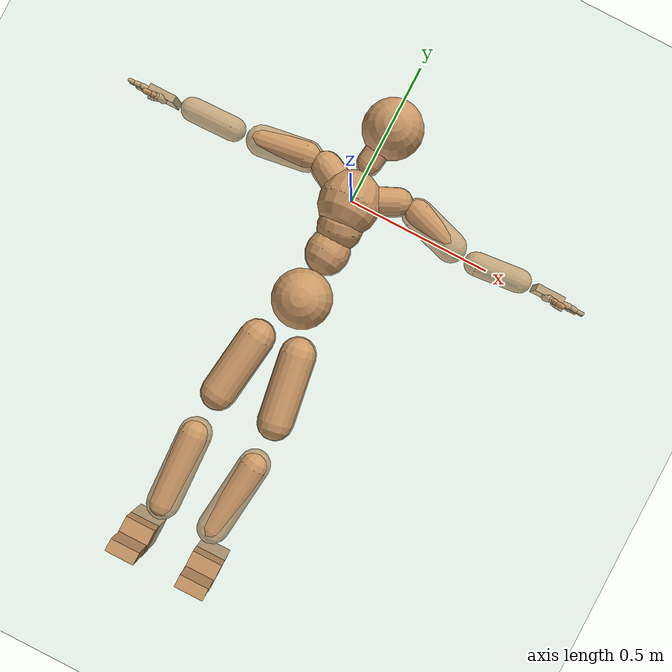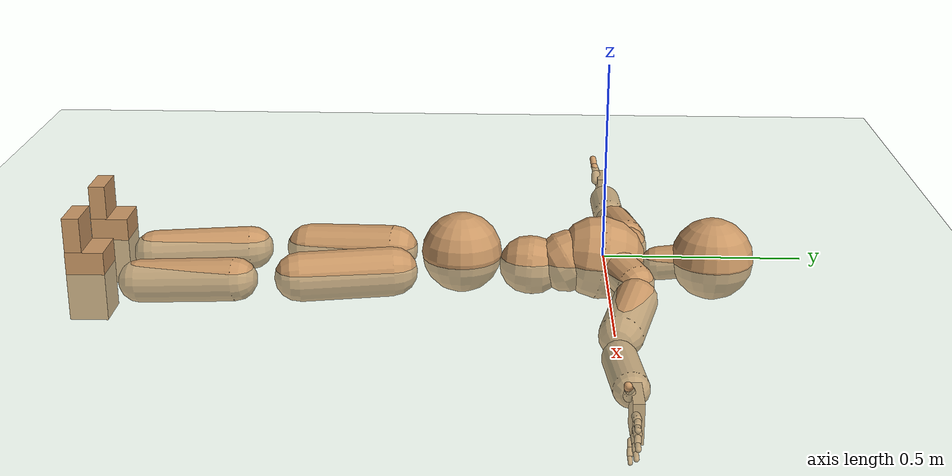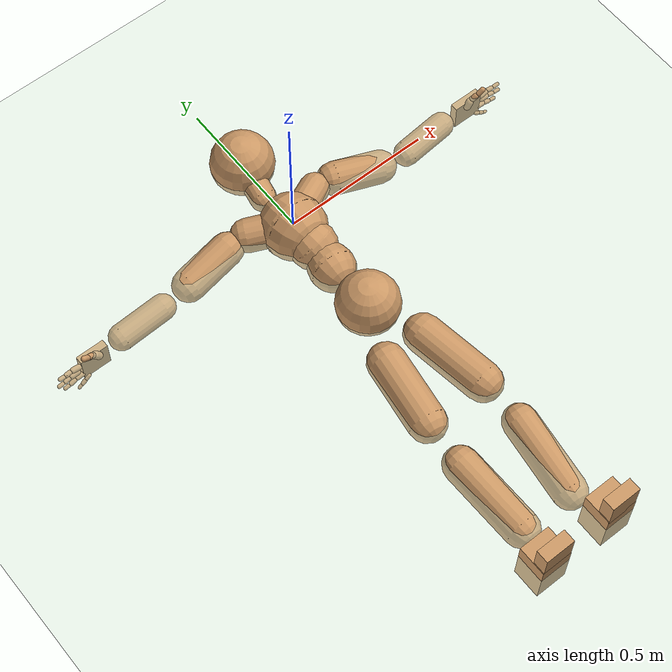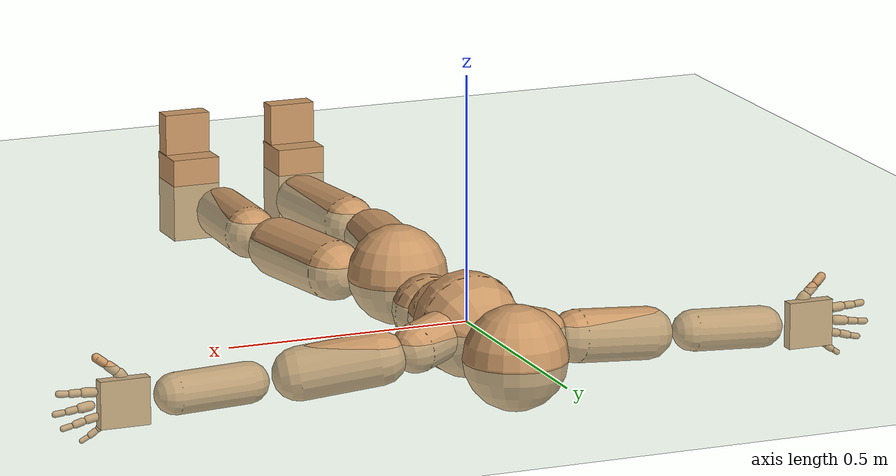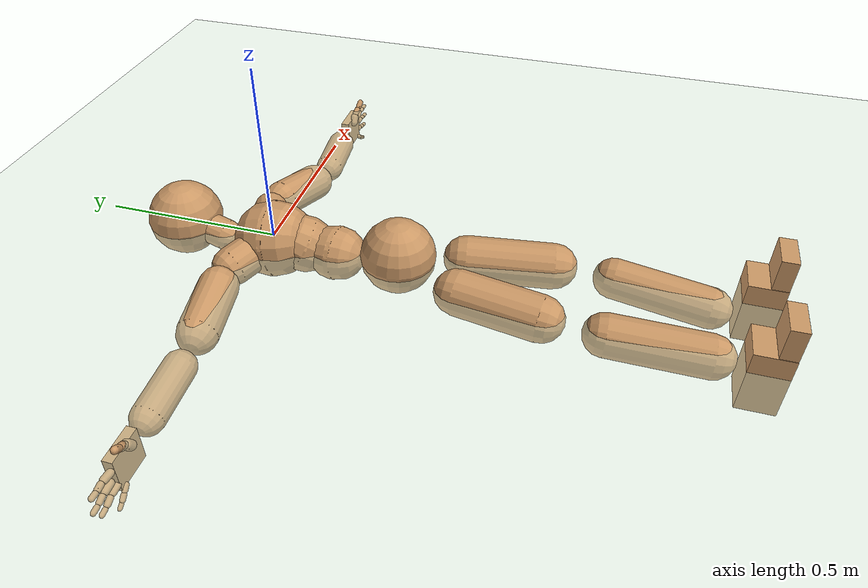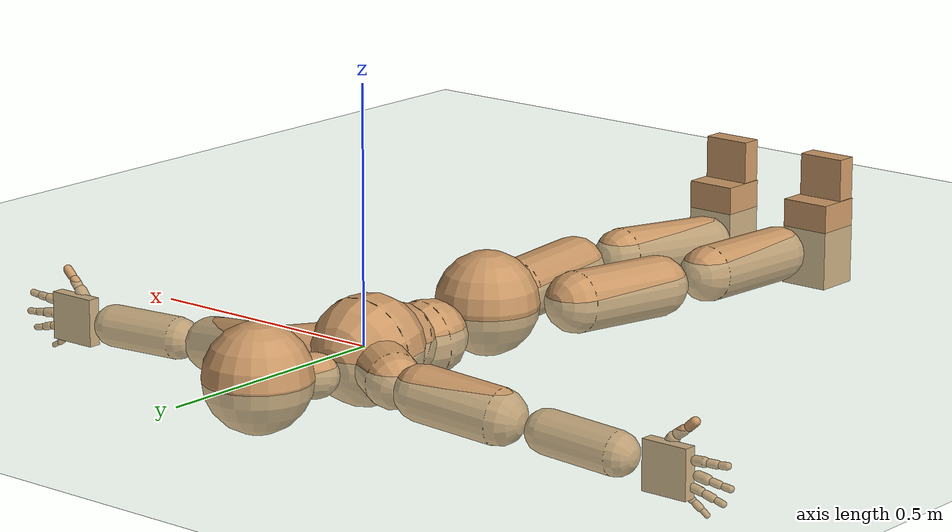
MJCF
<mujoco model="humanoid">
  <compiler coordinate="local"/>
  <default>
    <joint damping="0.0" armature="0.01" stiffness="0.0" limited="true"/>
    <geom conaffinity="1" condim="3" contype="7" margin="0.001" rgba="0.8 0.6 .4 1"/>
  </default>
  <asset>
    <texture type="skybox" builtin="gradient" rgb1=".4 .5 .6" rgb2="0 0 0" width="100" height="100"/>
    <texture builtin="flat" height="1278" mark="cross" markrgb="1 1 1" name="texgeom" random="0.01" rgb1="0.8 0.6 0.4" rgb2="0.8 0.6 0.4" type="cube" width="127"/>
    <texture builtin="checker" height="100" name="texplane" rgb1="0 0 0" rgb2="0.8 0.8 0.8" type="2d" width="100"/>
    <material name="MatPlane" reflectance="0.5" shininess="1" specular="1" texrepeat="60 60" texture="texplane"/>
    <material name="geom" texture="texgeom" texuniform="true"/>
  </asset>
  <worldbody>
    <light cutoff="100" diffuse="1 1 1" dir="-0 0 -1.3" directional="true" exponent="1" pos="0 0 1.3" specular=".1 .1 .1"/>
    <geom conaffinity="1" condim="3" name="floor" pos="0 0 0" rgba="0.8 0.9 0.8 1" size="100 100 .2" type="plane" material="MatPlane"/>
    <body name="Pelvis" pos="0.0031 -0.3613 0.0068">
      <freejoint name="Pelvis"/>
      <geom type="sphere" contype="1" conaffinity="1" density="4629.6296296296305" size="0.1027" pos="0.0000 0.0000 0.0000" name="Pelvis"/>
      <body name="L_Hip" pos="0.0604 -0.0947 -0.0262">
        <joint name="L_Hip_x" type="hinge" pos="0 0 0" axis="1 0 0" user="250 2.5 1 500 10 2" armature="0.01" range="-90.0000 90.0000" damping="0" stiffness="0"/>
        <joint name="L_Hip_y" type="hinge" pos="0 0 0" axis="0 1 0" user="250 2.5 1 500 10 2" armature="0.01" range="-90.0000 90.0000" damping="0" stiffness="0"/>
        <joint name="L_Hip_z" type="hinge" pos="0 0 0" axis="0 0 1" user="250 2.5 1 500 10 2" armature="0.01" range="-90.0000 90.0000" damping="0" stiffness="0"/>
        <geom type="capsule" contype="1" conaffinity="1" density="2040.816327" fromto="0.0121 -0.0777 -0.0014 0.0483 -0.3107 -0.0055" size="0.0629" name="L_Hip"/>
        <body name="L_Knee" pos="0.0603 -0.3884 -0.0069">
          <joint name="L_Knee_x" type="hinge" pos="0 0 0" axis="1 0 0" user="250 2.5 1 500 10 2" armature="0.01" range="-180.0000 180.0000" damping="0" stiffness="0"/>
          <joint name="L_Knee_y" type="hinge" pos="0 0 0" axis="0 1 0" user="250 2.5 1 500 10 2" armature="0.01" range="-5.6250 5.6250" damping="0" stiffness="0"/>
          <joint name="L_Knee_z" type="hinge" pos="0 0 0" axis="0 0 1" user="250 2.5 1 500 10 2" armature="0.01" range="-5.6250 5.6250" damping="0" stiffness="0"/>
          <geom type="capsule" contype="1" conaffinity="1" density="1234.567901" fromto="-0.0091 -0.0835 -0.0064 -0.0363 -0.3341 -0.0256" size="0.0553" name="L_Knee"/>
          <body name="L_Ankle" pos="-0.0454 -0.4177 -0.0321">
            <joint name="L_Ankle_x" type="hinge" pos="0 0 0" axis="1 0 0" user="150 2.5 1 500 10 2" armature="0.01" range="-90.0000 90.0000" damping="0" stiffness="0"/>
            <joint name="L_Ankle_y" type="hinge" pos="0 0 0" axis="0 1 0" user="150 2.5 1 500 10 2" armature="0.01" range="-90.0000 90.0000" damping="0" stiffness="0"/>
            <joint name="L_Ankle_z" type="hinge" pos="0 0 0" axis="0 0 1" user="150 2.5 1 500 10 2" armature="0.01" range="-90.0000 90.0000" damping="0" stiffness="0"/>
            <geom type="box" density="450.945141" pos="0.0432 -0.0306 0.0239" size="0.0521 0.0483 0.0897" quat="1.0000 0.0000 0.0000 0.0000" name="L_Ankle"/>
            <body name="L_Toe" pos="0.0501 -0.061 0.1231">
              <joint name="L_Toe_x" type="hinge" pos="0 0 0" axis="1 0 0" user="150 1 1 500 1 1" armature="0.01" range="-90.0000 90.0000" damping="0" stiffness="0"/>
              <joint name="L_Toe_y" type="hinge" pos="0 0 0" axis="0 1 0" user="150 1 1 500 1 1" armature="0.01" range="-45.0000 45.0000" damping="0" stiffness="0"/>
              <joint name="L_Toe_z" type="hinge" pos="0 0 0" axis="0 0 1" user="150 1 1 500 1 1" armature="0.01" range="-45.0000 45.0000" damping="0" stiffness="0"/>
              <geom type="box" density="419.071743" pos="-0.0069 0.0034 0.0268" size="0.05 0.0213 0.0518" quat="1.0000 0.0000 0.0000 0.0000" name="L_Toe"/>
            </body>
          </body>
        </body>
      </body>
      <body name="R_Hip" pos="-0.0654 -0.1063 -0.0208">
        <joint name="R_Hip_x" type="hinge" pos="0 0 0" axis="1 0 0" user="250 2.5 1 500 10 2" armature="0.01" range="-90.0000 90.0000" damping="0" stiffness="0"/>
        <joint name="R_Hip_y" type="hinge" pos="0 0 0" axis="0 1 0" user="250 2.5 1 500 10 2" armature="0.01" range="-90.0000 90.0000" damping="0" stiffness="0"/>
        <joint name="R_Hip_z" type="hinge" pos="0 0 0" axis="0 0 1" user="250 2.5 1 500 10 2" armature="0.01" range="-90.0000 90.0000" damping="0" stiffness="0"/>
        <geom type="capsule" contype="1" conaffinity="1" density="2040.816327" fromto="-0.0099 -0.0743 -0.0030 -0.0395 -0.2972 -0.0121" size="0.0622" name="R_Hip"/>
        <body name="R_Knee" pos="-0.0493 -0.3715 -0.0151">
          <joint name="R_Knee_x" type="hinge" pos="0 0 0" axis="1 0 0" user="250 2.5 1 500 10 2" armature="0.01" range="-180.0000 180.0000" damping="0" stiffness="0"/>
          <joint name="R_Knee_y" type="hinge" pos="0 0 0" axis="0 1 0" user="250 2.5 1 500 10 2" armature="0.01" range="-5.6250 5.6250" damping="0" stiffness="0"/>
          <joint name="R_Knee_z" type="hinge" pos="0 0 0" axis="0 0 1" user="250 2.5 1 500 10 2" armature="0.01" range="-5.6250 5.6250" damping="0" stiffness="0"/>
          <geom type="capsule" contype="1" conaffinity="1" density="1234.567901" fromto="0.0031 -0.0851 -0.0039 0.0125 -0.3406 -0.0157" size="0.057" name="R_Knee"/>
          <body name="R_Ankle" pos="0.0156 -0.4257 -0.0197">
            <joint name="R_Ankle_x" type="hinge" pos="0 0 0" axis="1 0 0" user="150 1 1 500 10 2" armature="0.01" range="-90.0000 90.0000" damping="0" stiffness="0"/>
            <joint name="R_Ankle_y" type="hinge" pos="0 0 0" axis="0 1 0" user="150 1 1 500 10 2" armature="0.01" range="-90.0000 90.0000" damping="0" stiffness="0"/>
            <joint name="R_Ankle_z" type="hinge" pos="0 0 0" axis="0 0 1" user="150 1 1 500 10 2" armature="0.01" range="-90.0000 90.0000" damping="0" stiffness="0"/>
            <geom type="box" density="450.940062" pos="-0.0257 -0.0280 0.0144" size="0.0521 0.0483 0.0897" quat="1.0000 0.0000 0.0000 0.0000" name="R_Ankle"/>
            <body name="R_Toe" pos="-0.0408 -0.0611 0.1239">
              <joint name="R_Toe_x" type="hinge" pos="0 0 0" axis="1 0 0" user="150 1 1 500 1 1" armature="0.01" range="-90.0000 90.0000" damping="0" stiffness="0"/>
              <joint name="R_Toe_y" type="hinge" pos="0 0 0" axis="0 1 0" user="150 1 1 500 1 1" armature="0.01" range="-45.0000 45.0000" damping="0" stiffness="0"/>
              <joint name="R_Toe_z" type="hinge" pos="0 0 0" axis="0 0 1" user="150 1 1 500 1 1" armature="0.01" range="-45.0000 45.0000" damping="0" stiffness="0"/>
              <geom type="box" density="419.069268" pos="0.0151 0.0061 0.0164" size="0.05 0.0213 0.0518" quat="1.0000 0.0000 0.0000 0.0000" name="R_Toe"/>
            </body>
          </body>
        </body>
      </body>
      <body name="Torso" pos="-0.0032 0.1122 -0.0293">
        <joint name="Torso_x" type="hinge" pos="0 0 0" axis="1 0 0" user="500 5 1 500 10 2" armature="0.01" range="-60.0000 60.0000" damping="0" stiffness="0"/>
        <joint name="Torso_y" type="hinge" pos="0 0 0" axis="0 1 0" user="500 5 1 500 10 2" armature="0.01" range="-60.0000 60.0000" damping="0" stiffness="0"/>
        <joint name="Torso_z" type="hinge" pos="0 0 0" axis="0 0 1" user="500 5 1 500 10 2" armature="0.01" range="-60.0000 60.0000" damping="0" stiffness="0"/>
        <geom type="capsule" contype="1" conaffinity="1" density="2040.816327" fromto="0.0048 0.0592 -0.0025 0.0059 0.0723 -0.0031" size="0.075" name="Torso"/>
        <body name="Spine" pos="0.0107 0.1315 -0.0057">
          <joint name="Spine_x" type="hinge" pos="0 0 0" axis="1 0 0" user="500 5 1 500 10 2" armature="0.01" range="-60.0000 60.0000" damping="0" stiffness="0"/>
          <joint name="Spine_y" type="hinge" pos="0 0 0" axis="0 1 0" user="500 5 1 500 10 2" armature="0.01" range="-60.0000 60.0000" damping="0" stiffness="0"/>
          <joint name="Spine_z" type="hinge" pos="0 0 0" axis="0 0 1" user="500 5 1 500 10 2" armature="0.01" range="-60.0000 60.0000" damping="0" stiffness="0"/>
          <geom type="capsule" contype="1" conaffinity="1" density="2040.816327" fromto="-0.0054 0.0246 0.0138 -0.0065 0.0300 0.0168" size="0.0789" name="Spine"/>
          <body name="Chest" pos="-0.0119 0.0546 0.0306">
            <joint name="Chest_x" type="hinge" pos="0 0 0" axis="1 0 0" user="500 5 1 500 10 2" armature="0.01" range="-60.0000 60.0000" damping="0" stiffness="0"/>
            <joint name="Chest_y" type="hinge" pos="0 0 0" axis="0 1 0" user="500 5 1 500 10 2" armature="0.01" range="-60.0000 60.0000" damping="0" stiffness="0"/>
            <joint name="Chest_z" type="hinge" pos="0 0 0" axis="0 0 1" user="500 5 1 500 10 2" armature="0.01" range="-60.0000 60.0000" damping="0" stiffness="0"/>
            <geom type="capsule" contype="1" conaffinity="1" density="2040.816327" fromto="-0.0021 0.0520 -0.0076 -0.0026 0.0636 -0.0093" size="0.106" name="Chest"/>
            <body name="Neck" pos="-0.0124 0.1716 -0.0299">
              <joint name="Neck_x" type="hinge" pos="0 0 0" axis="1 0 0" user="150 1 1 250 50 4" armature="0.01" range="-180.0000 180.0000" damping="0" stiffness="0"/>
              <joint name="Neck_y" type="hinge" pos="0 0 0" axis="0 1 0" user="150 1 1 250 50 4" armature="0.01" range="-180.0000 180.0000" damping="0" stiffness="0"/>
              <joint name="Neck_z" type="hinge" pos="0 0 0" axis="0 0 1" user="150 1 1 250 50 4" armature="0.01" range="-180.0000 180.0000" damping="0" stiffness="0"/>
              <geom type="capsule" contype="1" conaffinity="1" density="1000" fromto="0.0051 0.0335 0.0057 0.0204 0.1341 0.0230" size="0.0435" name="Neck"/>
              <body name="Head" pos="0.0255 0.1676 0.0287">
                <joint name="Head_x" type="hinge" pos="0 0 0" axis="1 0 0" user="150 1 1 250 50 4" armature="0.01" range="-90.0000 90.0000" damping="0" stiffness="0"/>
                <joint name="Head_y" type="hinge" pos="0 0 0" axis="0 1 0" user="150 1 1 250 50 4" armature="0.01" range="-90.0000 90.0000" damping="0" stiffness="0"/>
                <joint name="Head_z" type="hinge" pos="0 0 0" axis="0 0 1" user="150 1 1 250 50 4" armature="0.01" range="-90.0000 90.0000" damping="0" stiffness="0"/>
                <geom type="sphere" contype="1" conaffinity="1" density="1000" size="0.1043" pos="0.0000 0.0000 0.0000" name="Head"/>
              </body>
            </body>
            <body name="L_Thorax" pos="0.0457 0.088 -0.0068">
              <joint name="L_Thorax_x" type="hinge" pos="0 0 0" axis="1 0 0" user="200 2 1 500 50 4" armature="0.01" range="-180.0000 180.0000" damping="0" stiffness="0"/>
              <joint name="L_Thorax_y" type="hinge" pos="0 0 0" axis="0 1 0" user="200 2 1 500 50 4" armature="0.01" range="-180.0000 180.0000" damping="0" stiffness="0"/>
              <joint name="L_Thorax_z" type="hinge" pos="0 0 0" axis="0 0 1" user="200 2 1 500 50 4" armature="0.01" range="-180.0000 180.0000" damping="0" stiffness="0"/>
              <geom type="capsule" contype="1" conaffinity="1" density="1000" fromto="0.0234 0.0118 -0.0039 0.0937 0.0472 -0.0157" size="0.0498" name="L_Thorax"/>
              <body name="L_Shoulder" pos="0.1171 0.059 -0.0196">
                <joint name="L_Shoulder_x" type="hinge" pos="0 0 0" axis="1 0 0" user="200 2 1 500 50 4" armature="0.01" range="-180.0000 180.0000" damping="0" stiffness="0"/>
                <joint name="L_Shoulder_y" type="hinge" pos="0 0 0" axis="0 1 0" user="200 2 1 500 50 4" armature="0.01" range="-180.0000 180.0000" damping="0" stiffness="0"/>
                <joint name="L_Shoulder_z" type="hinge" pos="0 0 0" axis="0 0 1" user="200 2 1 500 50 4" armature="0.01" range="-180.0000 180.0000" damping="0" stiffness="0"/>
                <geom type="capsule" contype="1" conaffinity="1" density="1000" fromto="0.0509 -0.0147 -0.0087 0.2034 -0.0587 -0.0350" size="0.0542" name="L_Shoulder"/>
                <body name="L_Elbow" pos="0.2543 -0.0734 -0.0437">
                  <joint name="L_Elbow_x" type="hinge" pos="0 0 0" axis="1 0 0" user="150 1 1 150 10 2" armature="0.01" range="-720.0000 720.0000" damping="0" stiffness="0"/>
                  <joint name="L_Elbow_y" type="hinge" pos="0 0 0" axis="0 1 0" user="150 1 1 150 10 2" armature="0.01" range="-720.0000 720.0000" damping="0" stiffness="0"/>
                  <joint name="L_Elbow_z" type="hinge" pos="0 0 0" axis="0 0 1" user="150 1 1 150 10 2" armature="0.01" range="-720.0000 720.0000" damping="0" stiffness="0"/>
                  <geom type="capsule" contype="1" conaffinity="1" density="1000" fromto="0.0520 0.0051 -0.0003 0.2079 0.0206 -0.0011" size="0.0421" name="L_Elbow"/>
                  <body name="L_Wrist" pos="0.2599 0.0257 -0.0014">
                    <joint name="L_Wrist_x" type="hinge" pos="0 0 0" axis="1 0 0" user="100 1 1 150 1 1" armature="0.01" range="-180.0000 180.0000" damping="0" stiffness="0"/>
                    <joint name="L_Wrist_y" type="hinge" pos="0 0 0" axis="0 1 0" user="100 1 1 150 1 1" armature="0.01" range="-180.0000 180.0000" damping="0" stiffness="0"/>
                    <joint name="L_Wrist_z" type="hinge" pos="0 0 0" axis="0 0 1" user="100 1 1 150 1 1" armature="0.01" range="-180.0000 180.0000" damping="0" stiffness="0"/>
                    <geom type="box" density="1205.666375" pos="0.0549 -0.0014 -0.0032" size="0.0508 0.0128 0.048" quat="1.0000 0.0000 0.0000 0.0000" name="L_Wrist"/>
                    <body name="L_Index1" pos="0.107 -0.0086 0.0202">
                      <joint name="L_Index1_x" type="hinge" pos="0 0 0" axis="1 0 0" user="100 10 1 150" armature="0.01" range="-180.0000 180.0000" damping="0" stiffness="0"/>
                      <joint name="L_Index1_y" type="hinge" pos="0 0 0" axis="0 1 0" user="100 10 1 150" armature="0.01" range="-180.0000 180.0000" damping="0" stiffness="0"/>
                      <joint name="L_Index1_z" type="hinge" pos="0 0 0" axis="0 0 1" user="100 10 1 150" armature="0.01" range="-180.0000 180.0000" damping="0" stiffness="0"/>
                      <geom type="capsule" contype="1" conaffinity="1" density="1000" fromto="0.0066 0.0005 0.0006 0.0264 0.0019 0.0024" size="0.0095" name="L_Index1"/>
                      <body name="L_Index2" pos="0.033 0.0024 0.0029">
                        <joint name="L_Index2_x" type="hinge" pos="0 0 0" axis="1 0 0" user="100 10 1 150" armature="0.01" range="-180.0000 180.0000" damping="0" stiffness="0"/>
                        <joint name="L_Index2_y" type="hinge" pos="0 0 0" axis="0 1 0" user="100 10 1 150" armature="0.01" range="-180.0000 180.0000" damping="0" stiffness="0"/>
                        <joint name="L_Index2_z" type="hinge" pos="0 0 0" axis="0 0 1" user="100 10 1 150" armature="0.01" range="-180.0000 180.0000" damping="0" stiffness="0"/>
                        <geom type="capsule" contype="1" conaffinity="1" density="1000" fromto="0.0046 -0.0005 -0.0000 0.0186 -0.0020 -0.0001" size="0.0079" name="L_Index2"/>
                        <body name="L_Index3" pos="0.0232 -0.0025 -0.0001">
                          <joint name="L_Index3_x" type="hinge" pos="0 0 0" axis="1 0 0" user="100 10 1 150" armature="0.01" range="-180.0000 180.0000" damping="0" stiffness="0"/>
                          <joint name="L_Index3_y" type="hinge" pos="0 0 0" axis="0 1 0" user="100 10 1 150" armature="0.01" range="-180.0000 180.0000" damping="0" stiffness="0"/>
                          <joint name="L_Index3_z" type="hinge" pos="0 0 0" axis="0 0 1" user="100 10 1 150" armature="0.01" range="-180.0000 180.0000" damping="0" stiffness="0"/>
                          <geom type="capsule" contype="1" conaffinity="1" density="1000" fromto="0.0050 -0.0001 0.0004 0.0202 -0.0004 0.0015" size="0.0067" name="L_Index3"/>
                        </body>
                      </body>
                    </body>
                    <body name="L_Middle1" pos="0.1149 -0.0062 -0.0042">
                      <joint name="L_Middle1_x" type="hinge" pos="0 0 0" axis="1 0 0" user="100 10 1 150" armature="0.01" range="-180.0000 180.0000" damping="0" stiffness="0"/>
                      <joint name="L_Middle1_y" type="hinge" pos="0 0 0" axis="0 1 0" user="100 10 1 150" armature="0.01" range="-180.0000 180.0000" damping="0" stiffness="0"/>
                      <joint name="L_Middle1_z" type="hinge" pos="0 0 0" axis="0 0 1" user="100 10 1 150" armature="0.01" range="-180.0000 180.0000" damping="0" stiffness="0"/>
                      <geom type="capsule" contype="1" conaffinity="1" density="1000" fromto="0.0063 0.0002 -0.0008 0.0253 0.0007 -0.0033" size="0.0098" name="L_Middle1"/>
                      <body name="L_Middle2" pos="0.0316 0.0008 -0.0042">
                        <joint name="L_Middle2_x" type="hinge" pos="0 0 0" axis="1 0 0" user="100 10 1 150" armature="0.01" range="-180.0000 180.0000" damping="0" stiffness="0"/>
                        <joint name="L_Middle2_y" type="hinge" pos="0 0 0" axis="0 1 0" user="100 10 1 150" armature="0.01" range="-180.0000 180.0000" damping="0" stiffness="0"/>
                        <joint name="L_Middle2_z" type="hinge" pos="0 0 0" axis="0 0 1" user="100 10 1 150" armature="0.01" range="-180.0000 180.0000" damping="0" stiffness="0"/>
                        <geom type="capsule" contype="1" conaffinity="1" density="1000" fromto="0.0049 -0.0004 -0.0009 0.0194 -0.0017 -0.0035" size="0.0073" name="L_Middle2"/>
                        <body name="L_Middle3" pos="0.0243 -0.0021 -0.0043">
                          <joint name="L_Middle3_x" type="hinge" pos="0 0 0" axis="1 0 0" user="100 10 1 150" armature="0.01" range="-180.0000 180.0000" damping="0" stiffness="0"/>
                          <joint name="L_Middle3_y" type="hinge" pos="0 0 0" axis="0 1 0" user="100 10 1 150" armature="0.01" range="-180.0000 180.0000" damping="0" stiffness="0"/>
                          <joint name="L_Middle3_z" type="hinge" pos="0 0 0" axis="0 0 1" user="100 10 1 150" armature="0.01" range="-180.0000 180.0000" damping="0" stiffness="0"/>
                          <geom type="capsule" contype="1" conaffinity="1" density="1000" fromto="0.0053 -0.0000 -0.0005 0.0210 -0.0001 -0.0019" size="0.0063" name="L_Middle3"/>
                        </body>
                      </body>
                    </body>
                    <body name="L_Pinky1" pos="0.0887 -0.0147 -0.0457">
                      <joint name="L_Pinky1_x" type="hinge" pos="0 0 0" axis="1 0 0" user="100 10 1 150" armature="0.01" range="-180.0000 180.0000" damping="0" stiffness="0"/>
                      <joint name="L_Pinky1_y" type="hinge" pos="0 0 0" axis="0 1 0" user="100 10 1 150" armature="0.01" range="-180.0000 180.0000" damping="0" stiffness="0"/>
                      <joint name="L_Pinky1_z" type="hinge" pos="0 0 0" axis="0 0 1" user="100 10 1 150" armature="0.01" range="-180.0000 180.0000" damping="0" stiffness="0"/>
                      <geom type="capsule" contype="1" conaffinity="1" density="1000" fromto="0.0033 -0.0002 -0.0025 0.0130 -0.0010 -0.0099" size="0.0069" name="L_Pinky1"/>
                      <body name="L_Pinky2" pos="0.0163 -0.0012 -0.0123">
                        <joint name="L_Pinky2_x" type="hinge" pos="0 0 0" axis="1 0 0" user="100 10 1 150" armature="0.01" range="-180.0000 180.0000" damping="0" stiffness="0"/>
                        <joint name="L_Pinky2_y" type="hinge" pos="0 0 0" axis="0 1 0" user="100 10 1 150" armature="0.01" range="-180.0000 180.0000" damping="0" stiffness="0"/>
                        <joint name="L_Pinky2_z" type="hinge" pos="0 0 0" axis="0 0 1" user="100 10 1 150" armature="0.01" range="-180.0000 180.0000" damping="0" stiffness="0"/>
                        <geom type="capsule" contype="1" conaffinity="1" density="1000" fromto="0.0032 -0.0004 -0.0023 0.0129 -0.0014 -0.0092" size="0.0067" name="L_Pinky2"/>
                        <body name="L_Pinky3" pos="0.0162 -0.0018 -0.0115">
                          <joint name="L_Pinky3_x" type="hinge" pos="0 0 0" axis="1 0 0" user="100 10 1 150" armature="0.01" range="-180.0000 180.0000" damping="0" stiffness="0"/>
                          <joint name="L_Pinky3_y" type="hinge" pos="0 0 0" axis="0 1 0" user="100 10 1 150" armature="0.01" range="-180.0000 180.0000" damping="0" stiffness="0"/>
                          <joint name="L_Pinky3_z" type="hinge" pos="0 0 0" axis="0 0 1" user="100 10 1 150" armature="0.01" range="-180.0000 180.0000" damping="0" stiffness="0"/>
                          <geom type="capsule" contype="1" conaffinity="1" density="1000" fromto="0.0036 0.0000 -0.0019 0.0145 0.0002 -0.0076" size="0.0051" name="L_Pinky3"/>
                        </body>
                      </body>
                    </body>
                    <body name="L_Ring1" pos="0.1026 -0.0093 -0.0286">
                      <joint name="L_Ring1_x" type="hinge" pos="0 0 0" axis="1 0 0" user="100 10 1 150" armature="0.01" range="-180.0000 180.0000" damping="0" stiffness="0"/>
                      <joint name="L_Ring1_y" type="hinge" pos="0 0 0" axis="0 1 0" user="100 10 1 150" armature="0.01" range="-180.0000 180.0000" damping="0" stiffness="0"/>
                      <joint name="L_Ring1_z" type="hinge" pos="0 0 0" axis="0 0 1" user="100 10 1 150" armature="0.01" range="-180.0000 180.0000" damping="0" stiffness="0"/>
                      <geom type="capsule" contype="1" conaffinity="1" density="1000" fromto="0.0058 0.0003 -0.0011 0.0234 0.0012 -0.0043" size="0.0083" name="L_Ring1"/>
                      <body name="L_Ring2" pos="0.0292 0.0016 -0.0054">
                        <joint name="L_Ring2_x" type="hinge" pos="0 0 0" axis="1 0 0" user="100 10 1 150" armature="0.01" range="-180.0000 180.0000" damping="0" stiffness="0"/>
                        <joint name="L_Ring2_y" type="hinge" pos="0 0 0" axis="0 1 0" user="100 10 1 150" armature="0.01" range="-180.0000 180.0000" damping="0" stiffness="0"/>
                        <joint name="L_Ring2_z" type="hinge" pos="0 0 0" axis="0 0 1" user="100 10 1 150" armature="0.01" range="-180.0000 180.0000" damping="0" stiffness="0"/>
                        <geom type="capsule" contype="1" conaffinity="1" density="1000" fromto="0.0047 -0.0003 -0.0015 0.0189 -0.0012 -0.0059" size="0.0077" name="L_Ring2"/>
                        <body name="L_Ring3" pos="0.0236 -0.0015 -0.0074">
                          <joint name="L_Ring3_x" type="hinge" pos="0 0 0" axis="1 0 0" user="100 10 1 150" armature="0.01" range="-180.0000 180.0000" damping="0" stiffness="0"/>
                          <joint name="L_Ring3_y" type="hinge" pos="0 0 0" axis="0 1 0" user="100 10 1 150" armature="0.01" range="-180.0000 180.0000" damping="0" stiffness="0"/>
                          <joint name="L_Ring3_z" type="hinge" pos="0 0 0" axis="0 0 1" user="100 10 1 150" armature="0.01" range="-180.0000 180.0000" damping="0" stiffness="0"/>
                          <geom type="capsule" contype="1" conaffinity="1" density="1000" fromto="0.0051 0.0001 -0.0011 0.0205 0.0004 -0.0043" size="0.006" name="L_Ring3"/>
                        </body>
                      </body>
                    </body>
                    <body name="L_Thumb1" pos="0.0427 -0.0189 0.0272">
                      <joint name="L_Thumb1_x" type="hinge" pos="0 0 0" axis="1 0 0" user="100 10 1 150" armature="0.01" range="-180.0000 180.0000" damping="0" stiffness="0"/>
                      <joint name="L_Thumb1_y" type="hinge" pos="0 0 0" axis="0 1 0" user="100 10 1 150" armature="0.01" range="-180.0000 180.0000" damping="0" stiffness="0"/>
                      <joint name="L_Thumb1_z" type="hinge" pos="0 0 0" axis="0 0 1" user="100 10 1 150" armature="0.01" range="-180.0000 180.0000" damping="0" stiffness="0"/>
                      <geom type="capsule" contype="1" conaffinity="1" density="1000" fromto="0.0035 0.0002 0.0052 0.0141 0.0009 0.0208" size="0.0126" name="L_Thumb1"/>
                      <body name="L_Thumb2" pos="0.0177 0.0011 0.026">
                        <joint name="L_Thumb2_x" type="hinge" pos="0 0 0" axis="1 0 0" user="100 10 1 150" armature="0.01" range="-180.0000 180.0000" damping="0" stiffness="0"/>
                        <joint name="L_Thumb2_y" type="hinge" pos="0 0 0" axis="0 1 0" user="100 10 1 150" armature="0.01" range="-180.0000 180.0000" damping="0" stiffness="0"/>
                        <joint name="L_Thumb2_z" type="hinge" pos="0 0 0" axis="0 0 1" user="100 10 1 150" armature="0.01" range="-180.0000 180.0000" damping="0" stiffness="0"/>
                        <geom type="capsule" contype="1" conaffinity="1" density="1000" fromto="0.0043 -0.0011 0.0032 0.0171 -0.0043 0.0128" size="0.01" name="L_Thumb2"/>
                        <body name="L_Thumb3" pos="0.0214 -0.0054 0.016">
                          <joint name="L_Thumb3_x" type="hinge" pos="0 0 0" axis="1 0 0" user="100 10 1 150" armature="0.01" range="-180.0000 180.0000" damping="0" stiffness="0"/>
                          <joint name="L_Thumb3_y" type="hinge" pos="0 0 0" axis="0 1 0" user="100 10 1 150" armature="0.01" range="-180.0000 180.0000" damping="0" stiffness="0"/>
                          <joint name="L_Thumb3_z" type="hinge" pos="0 0 0" axis="0 0 1" user="100 10 1 150" armature="0.01" range="-180.0000 180.0000" damping="0" stiffness="0"/>
                          <geom type="capsule" contype="1" conaffinity="1" density="1000" fromto="0.0047 -0.0007 0.0036 0.0187 -0.0027 0.0144" size="0.0091" name="L_Thumb3"/>
                        </body>
                      </body>
                    </body>
                  </body>
                </body>
              </body>
            </body>
            <body name="R_Thorax" pos="-0.0474 0.087 -0.0137">
              <joint name="R_Thorax_x" type="hinge" pos="0 0 0" axis="1 0 0" user="200 2 1 150 10 2" armature="0.01" range="-180.0000 180.0000" damping="0" stiffness="0"/>
              <joint name="R_Thorax_y" type="hinge" pos="0 0 0" axis="0 1 0" user="200 2 1 150 10 2" armature="0.01" range="-180.0000 180.0000" damping="0" stiffness="0"/>
              <joint name="R_Thorax_z" type="hinge" pos="0 0 0" axis="0 0 1" user="200 2 1 150 10 2" armature="0.01" range="-180.0000 180.0000" damping="0" stiffness="0"/>
              <geom type="capsule" contype="1" conaffinity="1" density="1000" fromto="-0.0202 0.0109 -0.0032 -0.0809 0.0437 -0.0127" size="0.0547" name="R_Thorax"/>
              <body name="R_Shoulder" pos="-0.1012 0.0546 -0.0158">
                <joint name="R_Shoulder_x" type="hinge" pos="0 0 0" axis="1 0 0" user="200 2 1 250 10 2" armature="0.01" range="-180.0000 180.0000" damping="0" stiffness="0"/>
                <joint name="R_Shoulder_y" type="hinge" pos="0 0 0" axis="0 1 0" user="200 2 1 250 10 2" armature="0.01" range="-180.0000 180.0000" damping="0" stiffness="0"/>
                <joint name="R_Shoulder_z" type="hinge" pos="0 0 0" axis="0 0 1" user="200 2 1 250 10 2" armature="0.01" range="-180.0000 180.0000" damping="0" stiffness="0"/>
                <geom type="capsule" contype="1" conaffinity="1" density="1000" fromto="-0.0542 -0.0071 -0.0055 -0.2166 -0.0283 -0.0222" size="0.0542" name="R_Shoulder"/>
                <body name="R_Elbow" pos="-0.2708 -0.0354 -0.0277">
                  <joint name="R_Elbow_x" type="hinge" pos="0 0 0" axis="1 0 0" user="150 1 1 150 10 2" armature="0.01" range="-720.0000 720.0000" damping="0" stiffness="0"/>
                  <joint name="R_Elbow_y" type="hinge" pos="0 0 0" axis="0 1 0" user="150 1 1 150 10 2" armature="0.01" range="-720.0000 720.0000" damping="0" stiffness="0"/>
                  <joint name="R_Elbow_z" type="hinge" pos="0 0 0" axis="0 0 1" user="150 1 1 150 10 2" armature="0.01" range="-720.0000 720.0000" damping="0" stiffness="0"/>
                  <geom type="capsule" contype="1" conaffinity="1" density="1000" fromto="-0.0514 -0.0007 -0.0029 -0.2057 -0.0030 -0.0116" size="0.0424" name="R_Elbow"/>
                  <body name="R_Wrist" pos="-0.2571 -0.0037 -0.0145">
                    <joint name="R_Wrist_x" type="hinge" pos="0 0 0" axis="1 0 0" user="100 1 1 150 1 1" armature="0.01" range="-180.0000 180.0000" damping="0" stiffness="0"/>
                    <joint name="R_Wrist_y" type="hinge" pos="0 0 0" axis="0 1 0" user="100 1 1 150 1 1" armature="0.01" range="-180.0000 180.0000" damping="0" stiffness="0"/>
                    <joint name="R_Wrist_z" type="hinge" pos="0 0 0" axis="0 0 1" user="100 1 1 150 1 1" armature="0.01" range="-180.0000 180.0000" damping="0" stiffness="0"/>
                    <geom type="box" density="1235.542952" pos="-0.0564 -0.0046 -0.0030" size="0.0478 0.0128 0.048" quat="1.0000 0.0000 0.0000 0.0000" name="R_Wrist"/>
                    <body name="R_Index1" pos="-0.1049 -0.0119 0.0204">
                      <joint name="R_Index1_x" type="hinge" pos="0 0 0" axis="1 0 0" user="100 10 1 150" armature="0.01" range="-180.0000 180.0000" damping="0" stiffness="0"/>
                      <joint name="R_Index1_y" type="hinge" pos="0 0 0" axis="0 1 0" user="100 10 1 150" armature="0.01" range="-180.0000 180.0000" damping="0" stiffness="0"/>
                      <joint name="R_Index1_z" type="hinge" pos="0 0 0" axis="0 0 1" user="100 10 1 150" armature="0.01" range="-180.0000 180.0000" damping="0" stiffness="0"/>
                      <geom type="capsule" contype="1" conaffinity="1" density="1000" fromto="-0.0066 0.0005 0.0006 -0.0264 0.0019 0.0024" size="0.0095" name="R_Index1"/>
                      <body name="R_Index2" pos="-0.033 0.0024 0.0029">
                        <joint name="R_Index2_x" type="hinge" pos="0 0 0" axis="1 0 0" user="100 10 1 150" armature="0.01" range="-180.0000 180.0000" damping="0" stiffness="0"/>
                        <joint name="R_Index2_y" type="hinge" pos="0 0 0" axis="0 1 0" user="100 10 1 150" armature="0.01" range="-180.0000 180.0000" damping="0" stiffness="0"/>
                        <joint name="R_Index2_z" type="hinge" pos="0 0 0" axis="0 0 1" user="100 10 1 150" armature="0.01" range="-180.0000 180.0000" damping="0" stiffness="0"/>
                        <geom type="capsule" contype="1" conaffinity="1" density="1000" fromto="-0.0046 -0.0005 -0.0000 -0.0186 -0.0020 -0.0001" size="0.0079" name="R_Index2"/>
                        <body name="R_Index3" pos="-0.0232 -0.0025 -0.0001">
                          <joint name="R_Index3_x" type="hinge" pos="0 0 0" axis="1 0 0" user="100 10 1 150" armature="0.01" range="-180.0000 180.0000" damping="0" stiffness="0"/>
                          <joint name="R_Index3_y" type="hinge" pos="0 0 0" axis="0 1 0" user="100 10 1 150" armature="0.01" range="-180.0000 180.0000" damping="0" stiffness="0"/>
                          <joint name="R_Index3_z" type="hinge" pos="0 0 0" axis="0 0 1" user="100 10 1 150" armature="0.01" range="-180.0000 180.0000" damping="0" stiffness="0"/>
                          <geom type="capsule" contype="1" conaffinity="1" density="1000" fromto="-0.0042 -0.0001 0.0004 -0.0170 -0.0004 0.0015" size="0.007" name="R_Index3"/>
                        </body>
                      </body>
                    </body>
                    <body name="R_Middle1" pos="-0.1129 -0.0095 -0.004">
                      <joint name="R_Middle1_x" type="hinge" pos="0 0 0" axis="1 0 0" user="100 10 1 150" armature="0.01" range="-180.0000 180.0000" damping="0" stiffness="0"/>
                      <joint name="R_Middle1_y" type="hinge" pos="0 0 0" axis="0 1 0" user="100 10 1 150" armature="0.01" range="-180.0000 180.0000" damping="0" stiffness="0"/>
                      <joint name="R_Middle1_z" type="hinge" pos="0 0 0" axis="0 0 1" user="100 10 1 150" armature="0.01" range="-180.0000 180.0000" damping="0" stiffness="0"/>
                      <geom type="capsule" contype="1" conaffinity="1" density="1000" fromto="-0.0063 0.0002 -0.0008 -0.0253 0.0007 -0.0033" size="0.0098" name="R_Middle1"/>
                      <body name="R_Middle2" pos="-0.0316 0.0008 -0.0042">
                        <joint name="R_Middle2_x" type="hinge" pos="0 0 0" axis="1 0 0" user="100 10 1 150" armature="0.01" range="-180.0000 180.0000" damping="0" stiffness="0"/>
                        <joint name="R_Middle2_y" type="hinge" pos="0 0 0" axis="0 1 0" user="100 10 1 150" armature="0.01" range="-180.0000 180.0000" damping="0" stiffness="0"/>
                        <joint name="R_Middle2_z" type="hinge" pos="0 0 0" axis="0 0 1" user="100 10 1 150" armature="0.01" range="-180.0000 180.0000" damping="0" stiffness="0"/>
                        <geom type="capsule" contype="1" conaffinity="1" density="1000" fromto="-0.0049 -0.0004 -0.0009 -0.0194 -0.0017 -0.0035" size="0.0073" name="R_Middle2"/>
                        <body name="R_Middle3" pos="-0.0243 -0.0021 -0.0043">
                          <joint name="R_Middle3_x" type="hinge" pos="0 0 0" axis="1 0 0" user="100 10 1 150" armature="0.01" range="-180.0000 180.0000" damping="0" stiffness="0"/>
                          <joint name="R_Middle3_y" type="hinge" pos="0 0 0" axis="0 1 0" user="100 10 1 150" armature="0.01" range="-180.0000 180.0000" damping="0" stiffness="0"/>
                          <joint name="R_Middle3_z" type="hinge" pos="0 0 0" axis="0 0 1" user="100 10 1 150" armature="0.01" range="-180.0000 180.0000" damping="0" stiffness="0"/>
                          <geom type="capsule" contype="1" conaffinity="1" density="1000" fromto="-0.0045 -0.0000 -0.0005 -0.0178 -0.0001 -0.0019" size="0.0066" name="R_Middle3"/>
                        </body>
                      </body>
                    </body>
                    <body name="R_Pinky1" pos="-0.0866 -0.018 -0.0455">
                      <joint name="R_Pinky1_x" type="hinge" pos="0 0 0" axis="1 0 0" user="100 10 1 150" armature="0.01" range="-180.0000 180.0000" damping="0" stiffness="0"/>
                      <joint name="R_Pinky1_y" type="hinge" pos="0 0 0" axis="0 1 0" user="100 10 1 150" armature="0.01" range="-180.0000 180.0000" damping="0" stiffness="0"/>
                      <joint name="R_Pinky1_z" type="hinge" pos="0 0 0" axis="0 0 1" user="100 10 1 150" armature="0.01" range="-180.0000 180.0000" damping="0" stiffness="0"/>
                      <geom type="capsule" contype="1" conaffinity="1" density="1000" fromto="-0.0033 -0.0002 -0.0025 -0.0130 -0.0010 -0.0099" size="0.0069" name="R_Pinky1"/>
                      <body name="R_Pinky2" pos="-0.0163 -0.0012 -0.0123">
                        <joint name="R_Pinky2_x" type="hinge" pos="0 0 0" axis="1 0 0" user="100 10 1 150" armature="0.01" range="-180.0000 180.0000" damping="0" stiffness="0"/>
                        <joint name="R_Pinky2_y" type="hinge" pos="0 0 0" axis="0 1 0" user="100 10 1 150" armature="0.01" range="-180.0000 180.0000" damping="0" stiffness="0"/>
                        <joint name="R_Pinky2_z" type="hinge" pos="0 0 0" axis="0 0 1" user="100 10 1 150" armature="0.01" range="-180.0000 180.0000" damping="0" stiffness="0"/>
                        <geom type="capsule" contype="1" conaffinity="1" density="1000" fromto="-0.0032 -0.0004 -0.0023 -0.0129 -0.0014 -0.0092" size="0.0067" name="R_Pinky2"/>
                        <body name="R_Pinky3" pos="-0.0162 -0.0018 -0.0115">
                          <joint name="R_Pinky3_x" type="hinge" pos="0 0 0" axis="1 0 0" user="100 10 1 150" armature="0.01" range="-180.0000 180.0000" damping="0" stiffness="0"/>
                          <joint name="R_Pinky3_y" type="hinge" pos="0 0 0" axis="0 1 0" user="100 10 1 150" armature="0.01" range="-180.0000 180.0000" damping="0" stiffness="0"/>
                          <joint name="R_Pinky3_z" type="hinge" pos="0 0 0" axis="0 0 1" user="100 10 1 150" armature="0.01" range="-180.0000 180.0000" damping="0" stiffness="0"/>
                          <geom type="capsule" contype="1" conaffinity="1" density="1000" fromto="-0.0028 0.0000 -0.0019 -0.0113 0.0002 -0.0076" size="0.0054" name="R_Pinky3"/>
                        </body>
                      </body>
                    </body>
                    <body name="R_Ring1" pos="-0.1006 -0.0125 -0.0284">
                      <joint name="R_Ring1_x" type="hinge" pos="0 0 0" axis="1 0 0" user="100 10 1 150" armature="0.01" range="-180.0000 180.0000" damping="0" stiffness="0"/>
                      <joint name="R_Ring1_y" type="hinge" pos="0 0 0" axis="0 1 0" user="100 10 1 150" armature="0.01" range="-180.0000 180.0000" damping="0" stiffness="0"/>
                      <joint name="R_Ring1_z" type="hinge" pos="0 0 0" axis="0 0 1" user="100 10 1 150" armature="0.01" range="-180.0000 180.0000" damping="0" stiffness="0"/>
                      <geom type="capsule" contype="1" conaffinity="1" density="1000" fromto="-0.0058 0.0003 -0.0011 -0.0234 0.0012 -0.0043" size="0.0083" name="R_Ring1"/>
                      <body name="R_Ring2" pos="-0.0292 0.0016 -0.0054">
                        <joint name="R_Ring2_x" type="hinge" pos="0 0 0" axis="1 0 0" user="100 10 1 150" armature="0.01" range="-180.0000 180.0000" damping="0" stiffness="0"/>
                        <joint name="R_Ring2_y" type="hinge" pos="0 0 0" axis="0 1 0" user="100 10 1 150" armature="0.01" range="-180.0000 180.0000" damping="0" stiffness="0"/>
                        <joint name="R_Ring2_z" type="hinge" pos="0 0 0" axis="0 0 1" user="100 10 1 150" armature="0.01" range="-180.0000 180.0000" damping="0" stiffness="0"/>
                        <geom type="capsule" contype="1" conaffinity="1" density="1000" fromto="-0.0047 -0.0003 -0.0015 -0.0189 -0.0012 -0.0059" size="0.0077" name="R_Ring2"/>
                        <body name="R_Ring3" pos="-0.0236 -0.0015 -0.0074">
                          <joint name="R_Ring3_x" type="hinge" pos="0 0 0" axis="1 0 0" user="100 10 1 150" armature="0.01" range="-180.0000 180.0000" damping="0" stiffness="0"/>
                          <joint name="R_Ring3_y" type="hinge" pos="0 0 0" axis="0 1 0" user="100 10 1 150" armature="0.01" range="-180.0000 180.0000" damping="0" stiffness="0"/>
                          <joint name="R_Ring3_z" type="hinge" pos="0 0 0" axis="0 0 1" user="100 10 1 150" armature="0.01" range="-180.0000 180.0000" damping="0" stiffness="0"/>
                          <geom type="capsule" contype="1" conaffinity="1" density="1000" fromto="-0.0043 0.0001 -0.0011 -0.0173 0.0004 -0.0043" size="0.0062" name="R_Ring3"/>
                        </body>
                      </body>
                    </body>
                    <body name="R_Thumb1" pos="-0.0407 -0.0221 0.0273">
                      <joint name="R_Thumb1_x" type="hinge" pos="0 0 0" axis="1 0 0" user="100 10 1 150" armature="0.01" range="-180.0000 180.0000" damping="0" stiffness="0"/>
                      <joint name="R_Thumb1_y" type="hinge" pos="0 0 0" axis="0 1 0" user="100 10 1 150" armature="0.01" range="-180.0000 180.0000" damping="0" stiffness="0"/>
                      <joint name="R_Thumb1_z" type="hinge" pos="0 0 0" axis="0 0 1" user="100 10 1 150" armature="0.01" range="-180.0000 180.0000" damping="0" stiffness="0"/>
                      <geom type="capsule" contype="1" conaffinity="1" density="1000" fromto="-0.0035 0.0002 0.0052 -0.0141 0.0009 0.0208" size="0.0126" name="R_Thumb1"/>
                      <body name="R_Thumb2" pos="-0.0177 0.0011 0.026">
                        <joint name="R_Thumb2_x" type="hinge" pos="0 0 0" axis="1 0 0" user="100 10 1 150" armature="0.01" range="-180.0000 180.0000" damping="0" stiffness="0"/>
                        <joint name="R_Thumb2_y" type="hinge" pos="0 0 0" axis="0 1 0" user="100 10 1 150" armature="0.01" range="-180.0000 180.0000" damping="0" stiffness="0"/>
                        <joint name="R_Thumb2_z" type="hinge" pos="0 0 0" axis="0 0 1" user="100 10 1 150" armature="0.01" range="-180.0000 180.0000" damping="0" stiffness="0"/>
                        <geom type="capsule" contype="1" conaffinity="1" density="1000" fromto="-0.0043 -0.0011 0.0032 -0.0171 -0.0043 0.0128" size="0.01" name="R_Thumb2"/>
                        <body name="R_Thumb3" pos="-0.0214 -0.0054 0.016">
                          <joint name="R_Thumb3_x" type="hinge" pos="0 0 0" axis="1 0 0" user="100 10 1 150" armature="0.01" range="-180.0000 180.0000" damping="0" stiffness="0"/>
                          <joint name="R_Thumb3_y" type="hinge" pos="0 0 0" axis="0 1 0" user="100 10 1 150" armature="0.01" range="-180.0000 180.0000" damping="0" stiffness="0"/>
                          <joint name="R_Thumb3_z" type="hinge" pos="0 0 0" axis="0 0 1" user="100 10 1 150" armature="0.01" range="-180.0000 180.0000" damping="0" stiffness="0"/>
                          <geom type="capsule" contype="1" conaffinity="1" density="1000" fromto="-0.0039 -0.0007 0.0036 -0.0155 -0.0027 0.0144" size="0.0093" name="R_Thumb3"/>
                        </body>
                      </body>
                    </body>
                  </body>
                </body>
              </body>
            </body>
          </body>
        </body>
      </body>
    </body>
  </worldbody>
  <actuator>
    <motor name="L_Hip_x" joint="L_Hip_x" gear="1"/>
    <motor name="L_Hip_y" joint="L_Hip_y" gear="1"/>
    <motor name="L_Hip_z" joint="L_Hip_z" gear="1"/>
    <motor name="L_Knee_x" joint="L_Knee_x" gear="1"/>
    <motor name="L_Knee_y" joint="L_Knee_y" gear="1"/>
    <motor name="L_Knee_z" joint="L_Knee_z" gear="1"/>
    <motor name="L_Ankle_x" joint="L_Ankle_x" gear="1"/>
    <motor name="L_Ankle_y" joint="L_Ankle_y" gear="1"/>
    <motor name="L_Ankle_z" joint="L_Ankle_z" gear="1"/>
    <motor name="L_Toe_x" joint="L_Toe_x" gear="1"/>
    <motor name="L_Toe_y" joint="L_Toe_y" gear="1"/>
    <motor name="L_Toe_z" joint="L_Toe_z" gear="1"/>
    <motor name="R_Hip_x" joint="R_Hip_x" gear="1"/>
    <motor name="R_Hip_y" joint="R_Hip_y" gear="1"/>
    <motor name="R_Hip_z" joint="R_Hip_z" gear="1"/>
    <motor name="R_Knee_x" joint="R_Knee_x" gear="1"/>
    <motor name="R_Knee_y" joint="R_Knee_y" gear="1"/>
    <motor name="R_Knee_z" joint="R_Knee_z" gear="1"/>
    <motor name="R_Ankle_x" joint="R_Ankle_x" gear="1"/>
    <motor name="R_Ankle_y" joint="R_Ankle_y" gear="1"/>
    <motor name="R_Ankle_z" joint="R_Ankle_z" gear="1"/>
    <motor name="R_Toe_x" joint="R_Toe_x" gear="1"/>
    <motor name="R_Toe_y" joint="R_Toe_y" gear="1"/>
    <motor name="R_Toe_z" joint="R_Toe_z" gear="1"/>
    <motor name="Torso_x" joint="Torso_x" gear="1"/>
    <motor name="Torso_y" joint="Torso_y" gear="1"/>
    <motor name="Torso_z" joint="Torso_z" gear="1"/>
    <motor name="Spine_x" joint="Spine_x" gear="1"/>
    <motor name="Spine_y" joint="Spine_y" gear="1"/>
    <motor name="Spine_z" joint="Spine_z" gear="1"/>
    <motor name="Chest_x" joint="Chest_x" gear="1"/>
    <motor name="Chest_y" joint="Chest_y" gear="1"/>
    <motor name="Chest_z" joint="Chest_z" gear="1"/>
    <motor name="Neck_x" joint="Neck_x" gear="1"/>
    <motor name="Neck_y" joint="Neck_y" gear="1"/>
    <motor name="Neck_z" joint="Neck_z" gear="1"/>
    <motor name="Head_x" joint="Head_x" gear="1"/>
    <motor name="Head_y" joint="Head_y" gear="1"/>
    <motor name="Head_z" joint="Head_z" gear="1"/>
    <motor name="L_Thorax_x" joint="L_Thorax_x" gear="1"/>
    <motor name="L_Thorax_y" joint="L_Thorax_y" gear="1"/>
    <motor name="L_Thorax_z" joint="L_Thorax_z" gear="1"/>
    <motor name="L_Shoulder_x" joint="L_Shoulder_x" gear="1"/>
    <motor name="L_Shoulder_y" joint="L_Shoulder_y" gear="1"/>
    <motor name="L_Shoulder_z" joint="L_Shoulder_z" gear="1"/>
    <motor name="L_Elbow_x" joint="L_Elbow_x" gear="1"/>
    <motor name="L_Elbow_y" joint="L_Elbow_y" gear="1"/>
    <motor name="L_Elbow_z" joint="L_Elbow_z" gear="1"/>
    <motor name="L_Wrist_x" joint="L_Wrist_x" gear="1"/>
    <motor name="L_Wrist_y" joint="L_Wrist_y" gear="1"/>
    <motor name="L_Wrist_z" joint="L_Wrist_z" gear="1"/>
    <motor name="L_Index1_x" joint="L_Index1_x" gear="1"/>
    <motor name="L_Index1_y" joint="L_Index1_y" gear="1"/>
    <motor name="L_Index1_z" joint="L_Index1_z" gear="1"/>
    <motor name="L_Index2_x" joint="L_Index2_x" gear="1"/>
    <motor name="L_Index2_y" joint="L_Index2_y" gear="1"/>
    <motor name="L_Index2_z" joint="L_Index2_z" gear="1"/>
    <motor name="L_Index3_x" joint="L_Index3_x" gear="1"/>
    <motor name="L_Index3_y" joint="L_Index3_y" gear="1"/>
    <motor name="L_Index3_z" joint="L_Index3_z" gear="1"/>
    <motor name="L_Middle1_x" joint="L_Middle1_x" gear="1"/>
    <motor name="L_Middle1_y" joint="L_Middle1_y" gear="1"/>
    <motor name="L_Middle1_z" joint="L_Middle1_z" gear="1"/>
    <motor name="L_Middle2_x" joint="L_Middle2_x" gear="1"/>
    <motor name="L_Middle2_y" joint="L_Middle2_y" gear="1"/>
    <motor name="L_Middle2_z" joint="L_Middle2_z" gear="1"/>
    <motor name="L_Middle3_x" joint="L_Middle3_x" gear="1"/>
    <motor name="L_Middle3_y" joint="L_Middle3_y" gear="1"/>
    <motor name="L_Middle3_z" joint="L_Middle3_z" gear="1"/>
    <motor name="L_Pinky1_x" joint="L_Pinky1_x" gear="1"/>
    <motor name="L_Pinky1_y" joint="L_Pinky1_y" gear="1"/>
    <motor name="L_Pinky1_z" joint="L_Pinky1_z" gear="1"/>
    <motor name="L_Pinky2_x" joint="L_Pinky2_x" gear="1"/>
    <motor name="L_Pinky2_y" joint="L_Pinky2_y" gear="1"/>
    <motor name="L_Pinky2_z" joint="L_Pinky2_z" gear="1"/>
    <motor name="L_Pinky3_x" joint="L_Pinky3_x" gear="1"/>
    <motor name="L_Pinky3_y" joint="L_Pinky3_y" gear="1"/>
    <motor name="L_Pinky3_z" joint="L_Pinky3_z" gear="1"/>
    <motor name="L_Ring1_x" joint="L_Ring1_x" gear="1"/>
    <motor name="L_Ring1_y" joint="L_Ring1_y" gear="1"/>
    <motor name="L_Ring1_z" joint="L_Ring1_z" gear="1"/>
    <motor name="L_Ring2_x" joint="L_Ring2_x" gear="1"/>
    <motor name="L_Ring2_y" joint="L_Ring2_y" gear="1"/>
    <motor name="L_Ring2_z" joint="L_Ring2_z" gear="1"/>
    <motor name="L_Ring3_x" joint="L_Ring3_x" gear="1"/>
    <motor name="L_Ring3_y" joint="L_Ring3_y" gear="1"/>
    <motor name="L_Ring3_z" joint="L_Ring3_z" gear="1"/>
    <motor name="L_Thumb1_x" joint="L_Thumb1_x" gear="1"/>
    <motor name="L_Thumb1_y" joint="L_Thumb1_y" gear="1"/>
    <motor name="L_Thumb1_z" joint="L_Thumb1_z" gear="1"/>
    <motor name="L_Thumb2_x" joint="L_Thumb2_x" gear="1"/>
    <motor name="L_Thumb2_y" joint="L_Thumb2_y" gear="1"/>
    <motor name="L_Thumb2_z" joint="L_Thumb2_z" gear="1"/>
    <motor name="L_Thumb3_x" joint="L_Thumb3_x" gear="1"/>
    <motor name="L_Thumb3_y" joint="L_Thumb3_y" gear="1"/>
    <motor name="L_Thumb3_z" joint="L_Thumb3_z" gear="1"/>
    <motor name="R_Thorax_x" joint="R_Thorax_x" gear="1"/>
    <motor name="R_Thorax_y" joint="R_Thorax_y" gear="1"/>
    <motor name="R_Thorax_z" joint="R_Thorax_z" gear="1"/>
    <motor name="R_Shoulder_x" joint="R_Shoulder_x" gear="1"/>
    <motor name="R_Shoulder_y" joint="R_Shoulder_y" gear="1"/>
    <motor name="R_Shoulder_z" joint="R_Shoulder_z" gear="1"/>
    <motor name="R_Elbow_x" joint="R_Elbow_x" gear="1"/>
    <motor name="R_Elbow_y" joint="R_Elbow_y" gear="1"/>
    <motor name="R_Elbow_z" joint="R_Elbow_z" gear="1"/>
    <motor name="R_Wrist_x" joint="R_Wrist_x" gear="1"/>
    <motor name="R_Wrist_y" joint="R_Wrist_y" gear="1"/>
    <motor name="R_Wrist_z" joint="R_Wrist_z" gear="1"/>
    <motor name="R_Index1_x" joint="R_Index1_x" gear="1"/>
    <motor name="R_Index1_y" joint="R_Index1_y" gear="1"/>
    <motor name="R_Index1_z" joint="R_Index1_z" gear="1"/>
    <motor name="R_Index2_x" joint="R_Index2_x" gear="1"/>
    <motor name="R_Index2_y" joint="R_Index2_y" gear="1"/>
    <motor name="R_Index2_z" joint="R_Index2_z" gear="1"/>
    <motor name="R_Index3_x" joint="R_Index3_x" gear="1"/>
    <motor name="R_Index3_y" joint="R_Index3_y" gear="1"/>
    <motor name="R_Index3_z" joint="R_Index3_z" gear="1"/>
    <motor name="R_Middle1_x" joint="R_Middle1_x" gear="1"/>
    <motor name="R_Middle1_y" joint="R_Middle1_y" gear="1"/>
    <motor name="R_Middle1_z" joint="R_Middle1_z" gear="1"/>
    <motor name="R_Middle2_x" joint="R_Middle2_x" gear="1"/>
    <motor name="R_Middle2_y" joint="R_Middle2_y" gear="1"/>
    <motor name="R_Middle2_z" joint="R_Middle2_z" gear="1"/>
    <motor name="R_Middle3_x" joint="R_Middle3_x" gear="1"/>
    <motor name="R_Middle3_y" joint="R_Middle3_y" gear="1"/>
    <motor name="R_Middle3_z" joint="R_Middle3_z" gear="1"/>
    <motor name="R_Pinky1_x" joint="R_Pinky1_x" gear="1"/>
    <motor name="R_Pinky1_y" joint="R_Pinky1_y" gear="1"/>
    <motor name="R_Pinky1_z" joint="R_Pinky1_z" gear="1"/>
    <motor name="R_Pinky2_x" joint="R_Pinky2_x" gear="1"/>
    <motor name="R_Pinky2_y" joint="R_Pinky2_y" gear="1"/>
    <motor name="R_Pinky2_z" joint="R_Pinky2_z" gear="1"/>
    <motor name="R_Pinky3_x" joint="R_Pinky3_x" gear="1"/>
    <motor name="R_Pinky3_y" joint="R_Pinky3_y" gear="1"/>
    <motor name="R_Pinky3_z" joint="R_Pinky3_z" gear="1"/>
    <motor name="R_Ring1_x" joint="R_Ring1_x" gear="1"/>
    <motor name="R_Ring1_y" joint="R_Ring1_y" gear="1"/>
    <motor name="R_Ring1_z" joint="R_Ring1_z" gear="1"/>
    <motor name="R_Ring2_x" joint="R_Ring2_x" gear="1"/>
    <motor name="R_Ring2_y" joint="R_Ring2_y" gear="1"/>
    <motor name="R_Ring2_z" joint="R_Ring2_z" gear="1"/>
    <motor name="R_Ring3_x" joint="R_Ring3_x" gear="1"/>
    <motor name="R_Ring3_y" joint="R_Ring3_y" gear="1"/>
    <motor name="R_Ring3_z" joint="R_Ring3_z" gear="1"/>
    <motor name="R_Thumb1_x" joint="R_Thumb1_x" gear="1"/>
    <motor name="R_Thumb1_y" joint="R_Thumb1_y" gear="1"/>
    <motor name="R_Thumb1_z" joint="R_Thumb1_z" gear="1"/>
    <motor name="R_Thumb2_x" joint="R_Thumb2_x" gear="1"/>
    <motor name="R_Thumb2_y" joint="R_Thumb2_y" gear="1"/>
    <motor name="R_Thumb2_z" joint="R_Thumb2_z" gear="1"/>
    <motor name="R_Thumb3_x" joint="R_Thumb3_x" gear="1"/>
    <motor name="R_Thumb3_y" joint="R_Thumb3_y" gear="1"/>
    <motor name="R_Thumb3_z" joint="R_Thumb3_z" gear="1"/>
  </actuator>
  <contact>
    <exclude body1="Torso" body2="Chest"/>
    <exclude body1="Head" body2="Chest"/>
    <exclude body1="R_Knee" body2="R_Toe"/>
    <exclude body1="R_Knee" body2="L_Ankle"/>
    <exclude body1="R_Knee" body2="L_Toe"/>
    <exclude body1="L_Knee" body2="L_Toe"/>
    <exclude body1="L_Knee" body2="R_Ankle"/>
    <exclude body1="L_Knee" body2="R_Toe"/>
    <exclude body1="L_Shoulder" body2="Chest"/>
    <exclude body1="R_Shoulder" body2="Chest"/>
  </contact>
  <sensor/>
  <size njmax="700" nconmax="700"/>
</mujoco>
